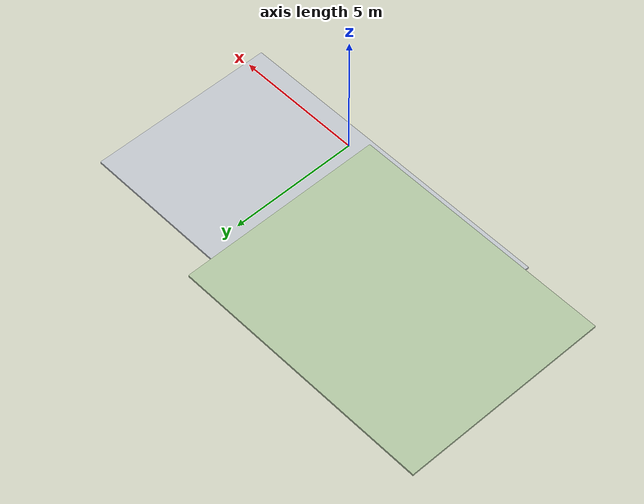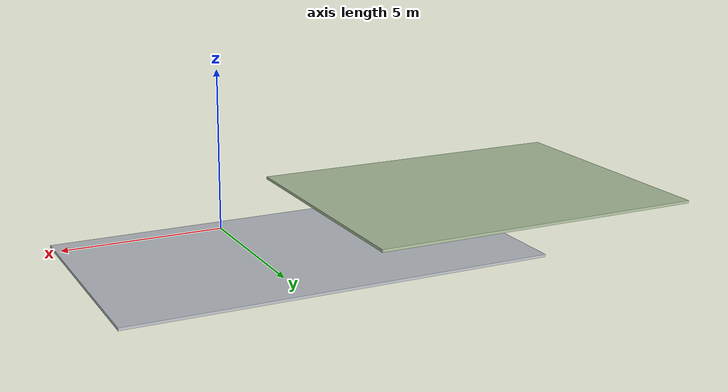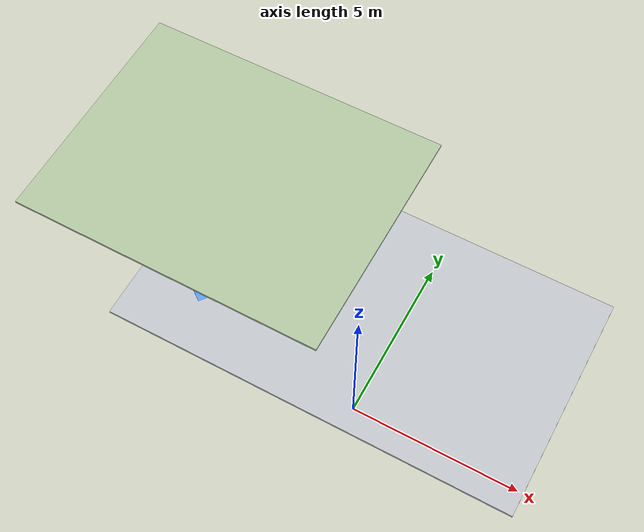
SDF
<sdf version="1.6">
 <world name="rslg_multifloor_ramp_turtlebot3_burger">
  <gravity>0 0 -9.8</gravity>
  <atmosphere type="adiabatic"/>
  <include><uri>model://sun</uri></include>
  <model name="rslg_floor_1_surface_z0">
   <static>true</static>
   <link name="link">
    <collision name="collision">
     <geometry><box><size>12.800000 7.200000 0.080000</size></box></geometry>
     <surface><friction><ode><mu>1.2</mu><mu2>1.2</mu2></ode></friction></surface>
    </collision>
    <visual name="visual">
     <geometry><box><size>12.800000 7.200000 0.080000</size></box></geometry>
     <material><ambient>0.740 0.760 0.780 1.000</ambient><diffuse>0.740 0.760 0.780 1.000</diffuse></material>
    </visual>
   </link>
   <pose>-1.250000 2.900000 -0.040000 0 0 0</pose>
  </model>
  <model name="rslg_floor_2_surface_z1_6">
   <static>true</static>
   <link name="link">
    <collision name="collision">
     <geometry><box><size>10.000000 7.800000 0.080000</size></box></geometry>
     <surface><friction><ode><mu>1.2</mu><mu2>1.2</mu2></ode></friction></surface>
    </collision>
    <visual name="visual">
     <geometry><box><size>10.000000 7.800000 0.080000</size></box></geometry>
     <material><ambient>0.680 0.760 0.620 1.000</ambient><diffuse>0.680 0.760 0.620 1.000</diffuse></material>
    </visual>
   </link>
   <pose>-6.400000 4.300000 1.560000 0 0 0</pose>
  </model>
  <model name="rslg_ramp_surrogate_slab_00">
   <static>true</static>
   <link name="link">
    <collision name="collision">
     <geometry><box><size>2.354000 1.050000 0.080000</size></box></geometry>
     <surface><friction><ode><mu>1.4</mu><mu2>1.4</mu2></ode></friction></surface>
    </collision>
    <visual name="visual">
     <geometry><box><size>2.354000 1.050000 0.080000</size></box></geometry>
     <material><ambient>0.340 0.600 0.920 1.000</ambient><diffuse>0.340 0.600 0.920 1.000</diffuse></material>
    </visual>
   </link>
   <pose>-6.166600 1.960962 0.160600 0 -0.170700 2.482300</pose>
  </model>
  <model name="rslg_ramp_surrogate_slab_01">
   <static>true</static>
   <link name="link">
    <collision name="collision">
     <geometry><box><size>4.037000 1.050000 0.080000</size></box></geometry>
     <surface><friction><ode><mu>1.4</mu><mu2>1.4</mu2></ode></friction></surface>
    </collision>
    <visual name="visual">
     <geometry><box><size>4.037000 1.050000 0.080000</size></box></geometry>
     <material><ambient>0.340 0.600 0.920 1.000</ambient><diffuse>0.340 0.600 0.920 1.000</diffuse></material>
    </visual>
   </link>
   <pose>-5.225000 3.350000 0.760800 0 -0.199500 0.350000</pose>
  </model>
  <model name="rslg_ramp_surrogate_slab_02">
   <static>true</static>
   <link name="link">
    <collision name="collision">
     <geometry><box><size>2.354000 1.050000 0.080000</size></box></geometry>
     <surface><friction><ode><mu>1.4</mu><mu2>1.4</mu2></ode></friction></surface>
    </collision>
    <visual name="visual">
     <geometry><box><size>2.354000 1.050000 0.080000</size></box></geometry>
     <material><ambient>0.340 0.600 0.920 1.000</ambient><diffuse>0.340 0.600 0.920 1.000</diffuse></material>
    </visual>
   </link>
   <pose>-4.283400 4.739038 1.360600 0 -0.170700 2.482300</pose>
  </model>
  <model name="rslg_ramp_turn_platform_01">
   <static>true</static>
   <link name="link">
    <collision name="collision">
     <geometry><box><size>1.150000 1.150000 0.060000</size></box></geometry>
     <surface><friction><ode><mu>1.4</mu><mu2>1.4</mu2></ode></friction></surface>
    </collision>
    <visual name="visual">
     <geometry><box><size>1.150000 1.150000 0.060000</size></box></geometry>
     <material><ambient>0.300 0.720 0.700 1.000</ambient><diffuse>0.300 0.720 0.700 1.000</diffuse></material>
    </visual>
   </link>
   <pose>-7.083201 2.671923 0.370000 0 0 0</pose>
  </model>
  <model name="rslg_ramp_turn_platform_02">
   <static>true</static>
   <link name="link">
    <collision name="collision">
     <geometry><box><size>1.150000 1.150000 0.060000</size></box></geometry>
     <surface><friction><ode><mu>1.4</mu><mu2>1.4</mu2></ode></friction></surface>
    </collision>
    <visual name="visual">
     <geometry><box><size>1.150000 1.150000 0.060000</size></box></geometry>
     <material><ambient>0.300 0.720 0.700 1.000</ambient><diffuse>0.300 0.720 0.700 1.000</diffuse></material>
    </visual>
   </link>
   <pose>-3.366799 4.028077 1.170000 0 0 0</pose>
  </model>
 </world>
</sdf>
